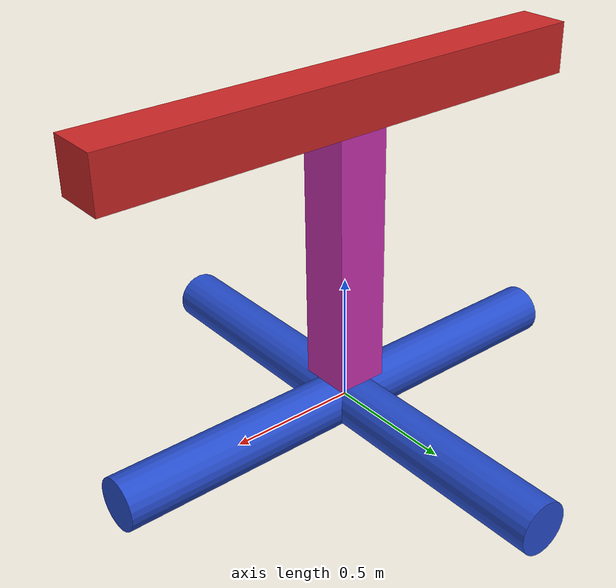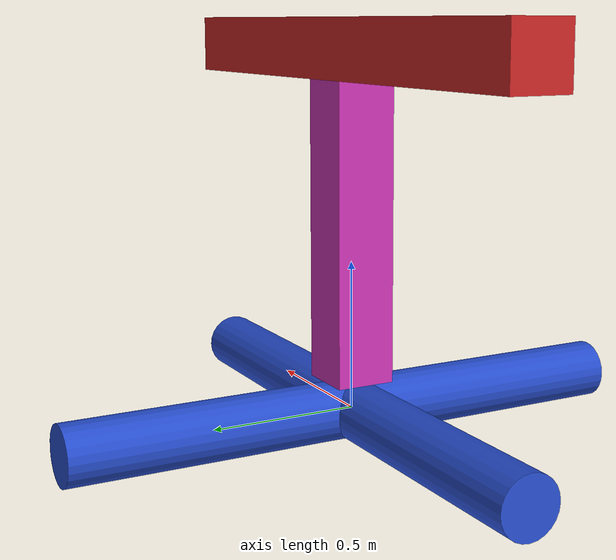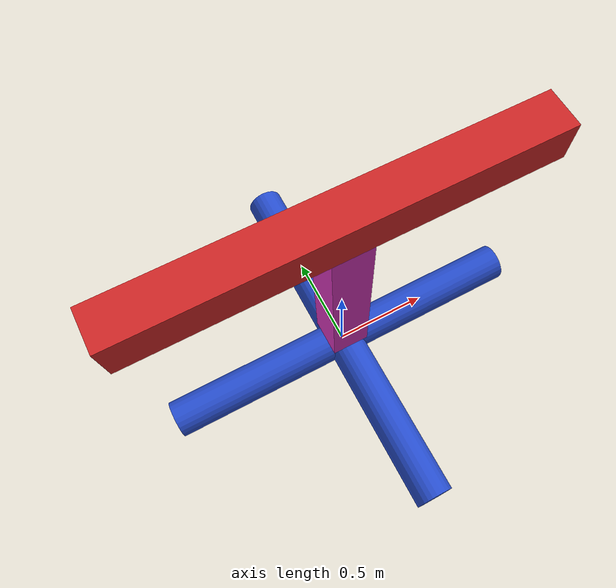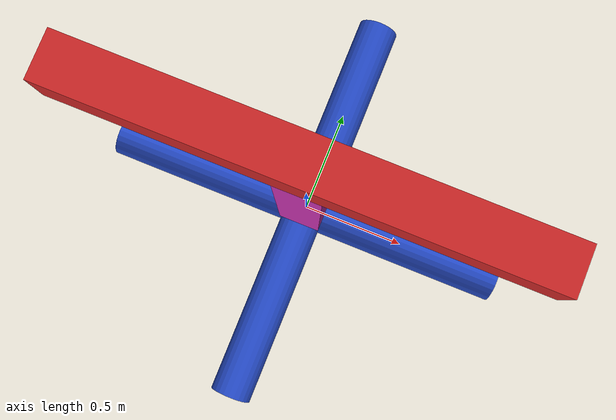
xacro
<?xml version="1.0"?>
<robot xmlns:xacro="http://www.ros.org/wiki/xacro"  name="robot">
    <!-- This will include all the contents of example_include.xacro first -->
    <xacro:include filename="colors.xacro" />
    <xacro:include filename="inertial.xacro" />

    <!-- This first link called "world" is empty -->
    <link name="world"></link>

    <!-- A simple fixed joint from our empty world link, to our base.
         The base origin is offset from the world origin. -->
    <joint name="cylinder1" type="fixed">
        <origin xyz="0 0 0" rpy="0 0 0"/>
        <parent link="world"/>
        <child link="cylinder1_link"/>
    </joint>

    <xacro:property name="cylinder_length" value="2" />
    <xacro:property name="cylinder_radius" value="0.1" />

    <link name="cylinder1_link">
        <visual>
            <origin xyz="0 0 0" rpy="0 ${pi/2} 0"/>
            <geometry>
                <cylinder length="${cylinder_length}" radius="${cylinder_radius}" />
            </geometry>
            <material name="blue" />
        </visual>
        <collision>
            <origin xyz="0 0 0" rpy="0 ${pi/2} 0"/>
            <geometry>
                <cylinder length="${cylinder_length}" radius="${cylinder_radius}" />
            </geometry>
        </collision>
        <xacro:inertial_cylinder mass="1.0" length="${cylinder_length}"
            radius="${cylinder_radius}">
            <origin xyz="0 0 0" rpy="0 ${pi/2} 0"/>
        </xacro:inertial_cylinder>
    </link>

    <joint name="cylinder2" type="fixed">
        <origin xyz="0 0 0" rpy="0 0 0"/>
        <parent link="world"/>
        <child link="cylinder2_link"/>
    </joint>

    <link name="cylinder2_link">
        <visual>
            <origin xyz="0 0 0" rpy="${pi/2} ${pi/2} 0"/>
            <geometry>
                <cylinder length="${cylinder_length}" radius="${cylinder_radius}" />
            </geometry>
            <material name="blue" />
        </visual>
        <collision>
            <origin xyz="0 0 0" rpy="${pi/2} ${pi/2} 0"/>
            <geometry>
                <cylinder length="${cylinder_length}" radius="${cylinder_radius}" />
            </geometry>
        </collision>
        <xacro:inertial_cylinder mass="1.0" length="${cylinder_length}"
            radius="${cylinder_radius}">
            <origin xyz="0 0 0" rpy="${pi/2} ${pi/2} 0"/>
        </xacro:inertial_cylinder>
    </link>

    <joint name="shaft" type="revolute">
        <origin xyz="0 0 0" rpy="0 0 0"/>
        <parent link="world"/>
        <child link="shaft_link"/>
        <axis xyz="0 0 1"/>
        <limit lower="0" upper="${2*pi}" velocity="100" effort="100"/>
    </joint>

    <xacro:property name="shaft_side_length" value="0.2" />
    <xacro:property name="shaft_height" value="1"/>

    <link name="shaft_link">
        <visual>
            <origin xyz="0 0 ${shaft_height/2+(cylinder_radius)}" rpy="0 0 0"/>
            <geometry>
                <box size="${shaft_side_length} ${shaft_side_length} ${shaft_height}"/>
            </geometry>
            <material name="magenta"/>
        </visual>
        <collision>
            <origin xyz="0 0 ${shaft_height/2}" rpy="0 0 0"/>
            <geometry>
                <box size="${shaft_side_length} ${shaft_side_length} ${shaft_height}"/>
            </geometry>
        </collision>
        <xacro:inertial_box mass="0.1" x="${shaft_side_length/2}" y="${shaft_side_length/2}" z="${shaft_height/2}">
            <origin xyz="0.0 0 0" rpy="0 0 0"/>
        </xacro:inertial_box>
    </link>

    <xacro:property name="topshaft_side_length" value="0.2" />
    <xacro:property name="topshaft_height" value="2"/>

    <joint name="topshaft" type="prismatic">
        <origin xyz="0 0 ${shaft_height+(topshaft_side_length/2)+(cylinder_radius)}" rpy="0 0 0"/>
        <parent link="shaft_link"/>
        <child link="topshaft_link"/>
        <axis xyz="1 0 0"/>
        <limit lower="${-(topshaft_height/2-0.2)}" upper="${topshaft_height/2-0.1}" velocity="100" effort="100"/>
    </joint>

    <link name="topshaft_link">
        <visual>
            <origin xyz="0 0 0" rpy="0 ${pi/2} 0"/>
            <geometry>
                <box size="${topshaft_side_length} ${topshaft_side_length} ${topshaft_height}"/>
            </geometry>
            <material name="red"/>
        </visual>
        <collision>
            <origin xyz="0 0 ${shaft_height}" rpy="0 ${pi/2} 0"/>
            <geometry>
                <box size="${topshaft_side_length} ${topshaft_side_length} ${topshaft_height}"/>
            </geometry>
        </collision>
        <xacro:inertial_box mass="0.1" x="${topshaft_side_length/2}" y="${topshaft_side_length/2}" z="${topshaft_height/2}">
            <origin xyz="0.0 0 0" rpy="0 ${pi/2} 0"/>
        </xacro:inertial_box>
    </link>
</robot>

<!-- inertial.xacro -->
<robot xmlns:xacro="http://www.ros.org/wiki/xacro" >
    <!-- Specify some standard inertial calculations
         https://en.wikipedia.org/wiki/List_of_moments_of_inertia
         These make use of xacro's mathematical functionality -->

    <!-- Sphere -->
    <xacro:macro name="inertial_sphere" params="mass radius *origin">
        <inertial>
            <xacro:insert_block name="origin"/>
            <mass value="${mass}" />
            <inertia ixx="${(2/5) * mass * (radius*radius)}" ixy="0.0" ixz="0.0"
                    iyy="${(2/5) * mass * (radius*radius)}" iyz="0.0"
                    izz="${(2/5) * mass * (radius*radius)}" />
        </inertial>
    </xacro:macro>

    <!-- Box -->
    <xacro:macro name="inertial_box" params="mass x y z *origin">
        <inertial>
            <xacro:insert_block name="origin"/>
            <mass value="${mass}" />
            <inertia ixx="${(1/12) * mass * (y*y+z*z)}" ixy="0.0" ixz="0.0"
                    iyy="${(1/12) * mass * (x*x+z*z)}" iyz="0.0"
                    izz="${(1/12) * mass * (x*x+y*y)}" />
        </inertial>
    </xacro:macro>

    <!-- Cyclinder-->
    <xacro:macro name="inertial_cylinder" params="mass length radius *origin">
        <inertial>
            <xacro:insert_block name="origin"/>
            <mass value="${mass}" />
            <inertia ixx="${(1/12) * mass * (3*radius*radius + length*length)}"
                ixy="0.0" ixz="0.0"
                iyy="${(1/12) * mass * (3*radius*radius + length*length)}"
                iyz="0.0" izz="${(1/2) * mass * (radius*radius)}" />
        </inertial>
    </xacro:macro>
</robot>
